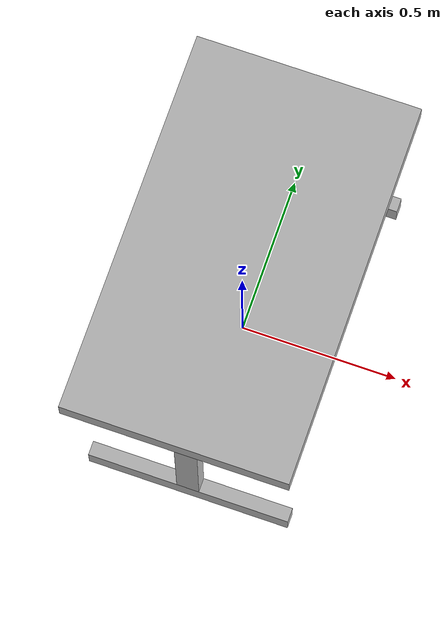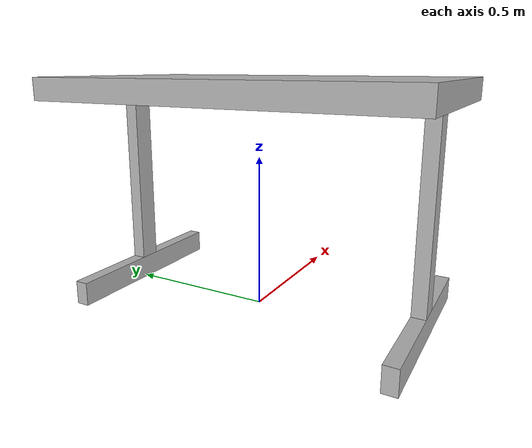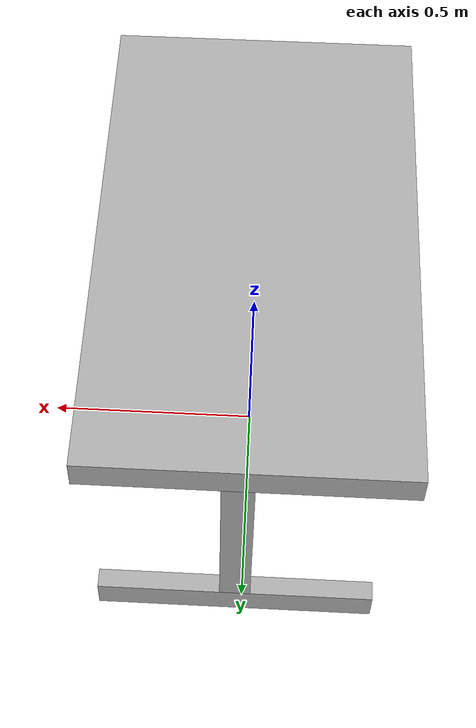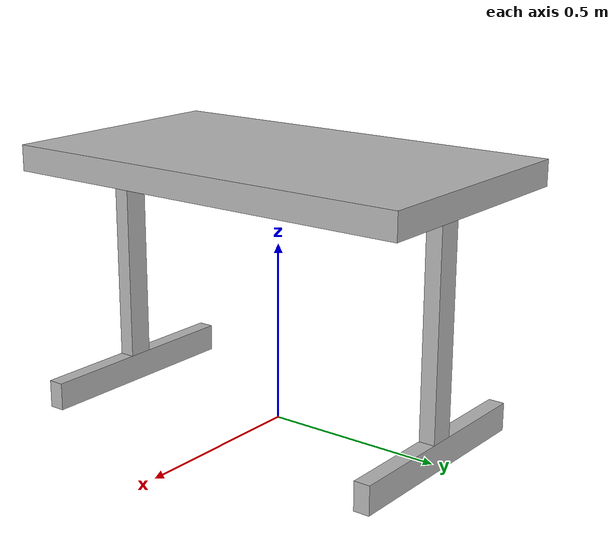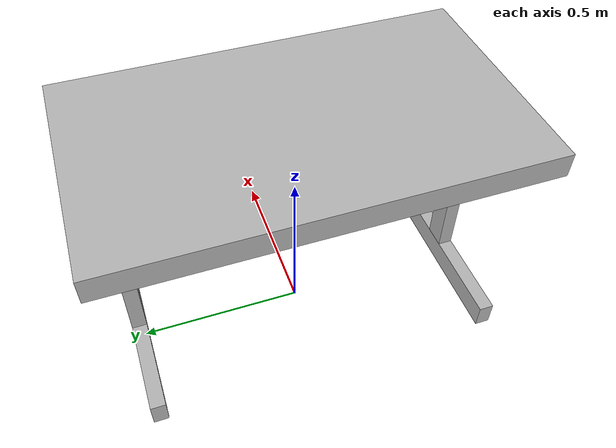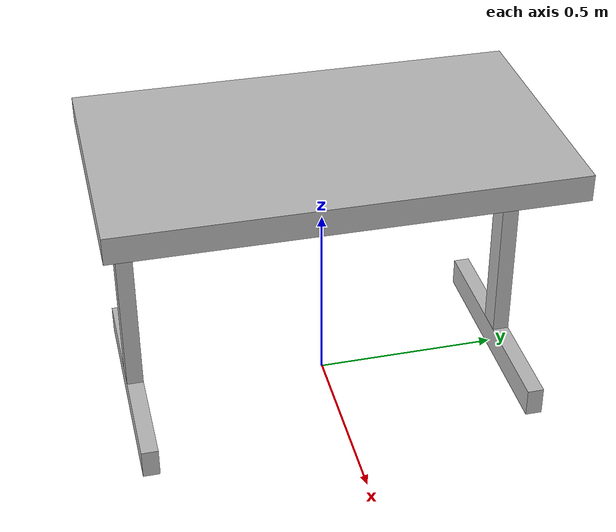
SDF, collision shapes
<?xml version="1.0" ?>
<sdf version="1.0">
  <model name="work_table">
    <static>true</static>
    <link name="work_table">
      <collision name="surface">
        <pose>0 0 0.7142 0 0 0</pose>
        <geometry>
          <box>
            <size>0.7 1.2 0.0715</size>
          </box>
        </geometry>
        <surface>
          <friction>
            <ode>
              <mu>0.6</mu>
              <mu2>0.6</mu2>
            </ode>
          </friction>
        </surface>
      </collision>

      <collision name="left_leg">
        <pose>0.0162 0.5126 0.3785 0 0 0</pose>
        <geometry>
          <box>
            <size>0.0715 0.0447 0.6000</size>
          </box>
        </geometry>
      </collision>

      <collision name="right_leg">
        <pose>0.0162 -0.5327 0.3785 0 0 0</pose>
        <geometry>
          <box>
            <size>0.0715 0.0447 0.6000</size>
          </box>
        </geometry>
      </collision>

      <collision name="left_horizontal_leg">
        <pose>0.0162 0.5126 0.0393 0 0 0</pose>
        <geometry>
          <box>
            <size>0.6423 0.0447 0.0785</size>
          </box>
        </geometry>
      </collision>

      <collision name="right_horizontal_leg">
        <pose>0.0162 -0.5327 0.0393 0 0 0</pose>
        <geometry>
          <box>
            <size>0.6423 0.0447 0.0785</size>
          </box>
        </geometry>
      </collision>

      <visual name="work_table_mesh">
	  <cast_shadows>true</cast_shadows>
        <geometry>
          <mesh>
	        <uri>model://work_table/meshes/model.dae</uri>
	      </mesh>
        </geometry>
      </visual>
    </link>
  </model>
</sdf>
